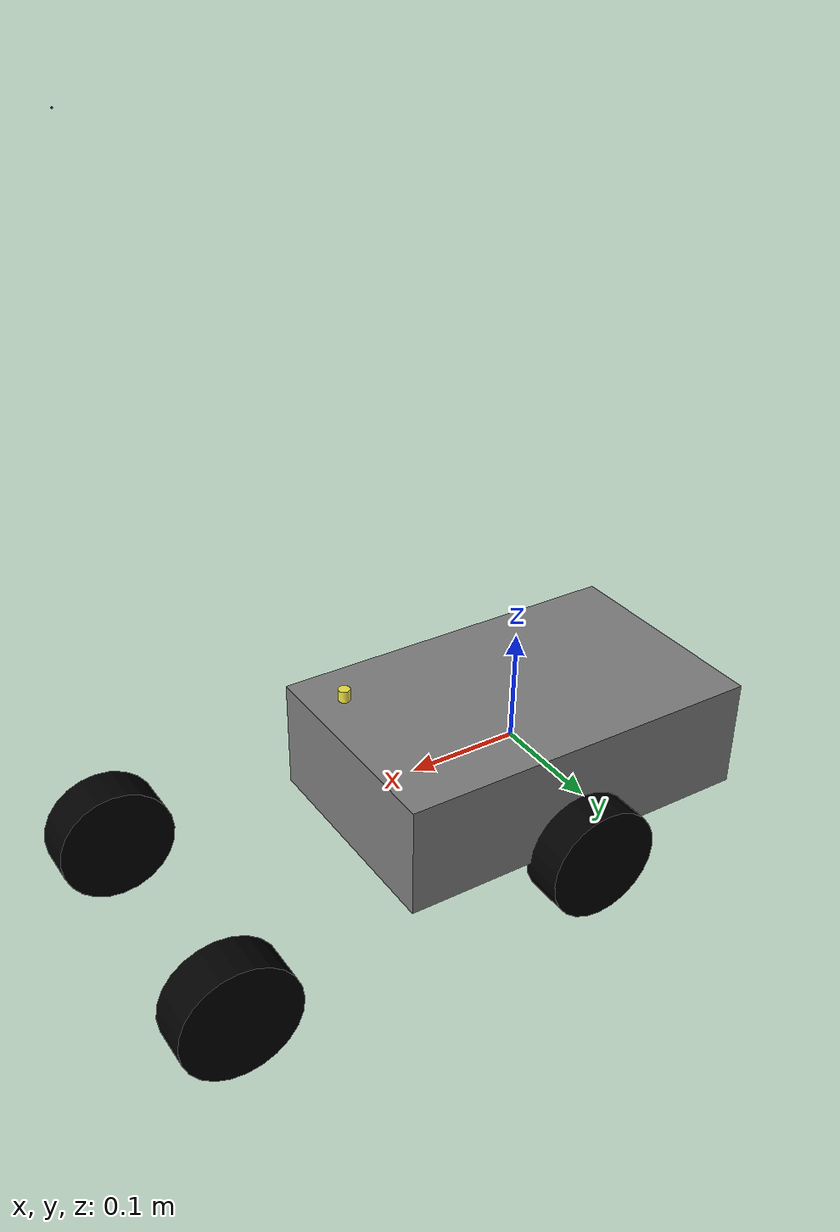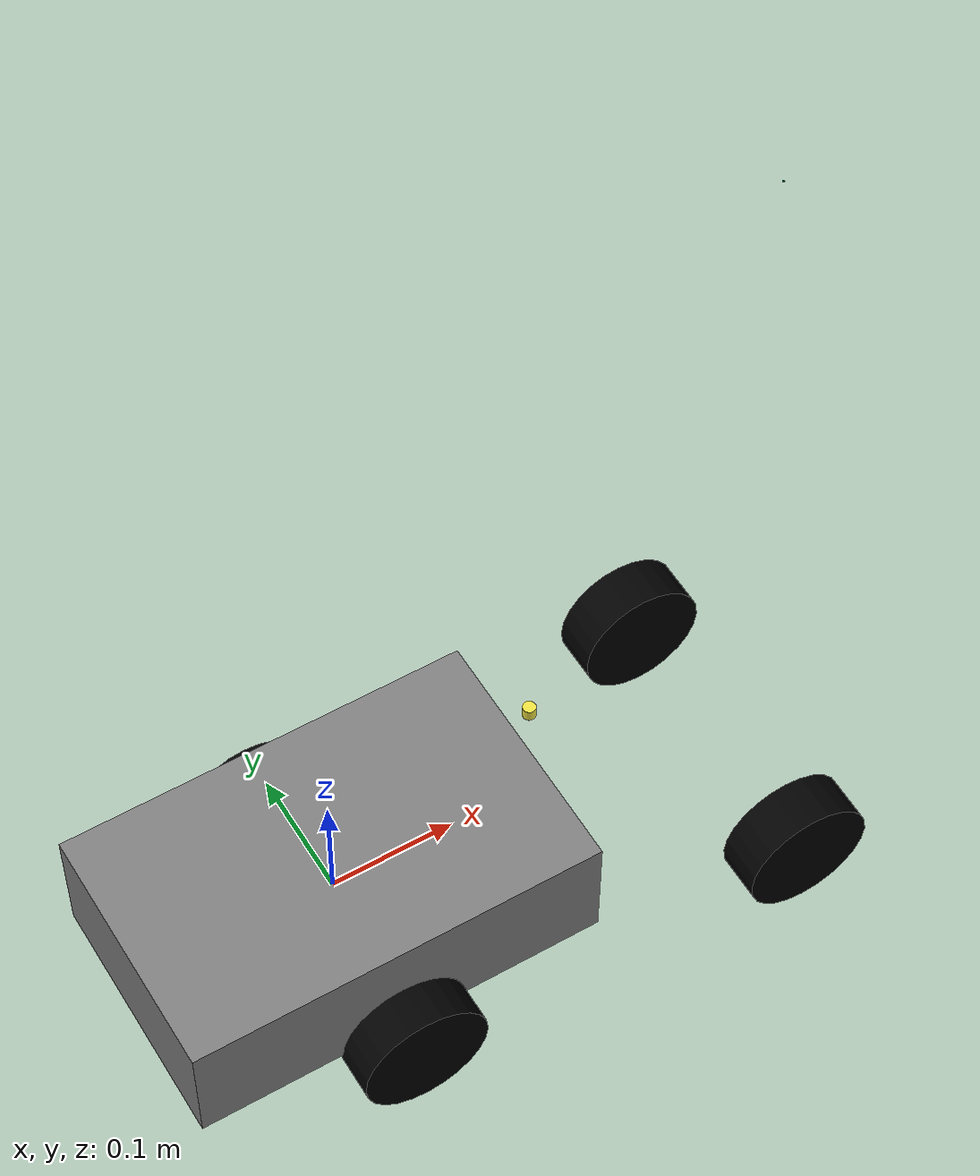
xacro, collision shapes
<?xml version="1.0"?>

<robot name="racecar" xmlns:xacro="http://www.ros.org/wiki/xacro">
  <!-- Degree-to-radian conversions -->
  <xacro:property name="degrees_45" value="0.785398163"/>  <!-- ja -->
  <xacro:property name="degrees_90" value="1.57079633"/>   <!-- ja -->
  <xacro:property name="degrees_180" value="3.14159265"/>

  <!-- chassis_length is measured along the x axis, chassis_width
       along the y axis, and chassis_height along the z axis. -->
  <xacro:property name="chassis_length" value="0.3302"/>
  <xacro:property name="chassis_width" value="0.2032"/>
  <xacro:property name="chassis_height" value="0.1"/>
  <xacro:property name="chassis_mass" value="6.788"/>
  <xacro:property name="ground_offset" value="0.04" />
  <xacro:property name="sensor_offset" value="0.05" />
  <xacro:property name="wheel_length" value="0.0381" />
  <xacro:property name="wheel_radius" value="0.0508" />
  <xacro:property name="body_mass" value="${chassis_mass}"/>
  <!--xacro:property name="wheel_mass" value="${wheel_density*pi_const*wheel_link_radius*wheel_link_radius*wheel_link_length}"/-->

  <!-- Properties of the wheel pose -->
  <xacro:property name="front_wheel_x" value="${chassis_length}"/>
  <xacro:property name="front_wheel_y" value="${(wheel_length+chassis_width)/2}"/>
  <xacro:property name="front_wheel_z" value="${wheel_radius}"/>

  <xacro:property name="rear_wheel_x" value="0"/>
  <xacro:property name="rear_wheel_y" value="${(wheel_length+chassis_width)/2}"/>
  <xacro:property name="rear_wheel_z" value="${wheel_radius}"/>

  <xacro:property name="hub_dia" value="0.09652"/>
  <xacro:property name="tire_dia" value="0.1016"/>
  <xacro:property name="tire_width" value="0.0381"/>
  <xacro:property name="hex_hub_depth" value="0.01445"/>
  <xacro:property name="wheel_mass" value="0.29"/>

  <xacro:property name="axle_eff_limit" value="5.12766"/>
  <xacro:property name="axle_vel_limit" value="244.8696"/>

  <!-- These constants are used to simulate a Traxxas 2056 servo operated at
       6 V. servo_stall_torque is measured in N m. servo_no_load_speed is
       measured in rad/s. -->
  <xacro:property name="servo_stall_torque" value="0.5649"/>
  <xacro:property name="servo_no_load_speed" value="4.553"/>

  <material name="battery_mat">
    <color rgba="0 0 1 1"/>
  </material>
  <material name="chassis_mat">
    <color rgba="0.5 0.5 0.5 1"/>
  </material>
  <material name="tire_mat">
    <color rgba="0 0 0 1"/>
  </material>

  <material name="black">
      <color rgba="0 0 0 1"/>
  </material>

  <!-- Null inertial element. This is needed to make the model work with
       Gazebo. -->
  <xacro:macro name="null_inertial">
    <inertial>
      <mass value="0.001"/>
      <inertia ixx="0.001" ixy="0" ixz="0" iyy="0.001" iyz="0" izz="0.001"/>
    </inertial>
  </xacro:macro>

  <xacro:macro name="thick_walled_tube_inertial"
               params="inner_rad outer_rad height mass">
    <inertial>
      <mass value="${mass}"/>
      <inertia ixx="${(1 / 12) * mass * (3 * (inner_rad * inner_rad +
                    outer_rad * outer_rad) + height * height)}"
               ixy="0" ixz="0"
               iyy="${(1 / 12) * mass * (3 * (inner_rad * inner_rad +
                    outer_rad * outer_rad) + height * height)}"
               iyz="0"
               izz="${mass * (inner_rad * inner_rad +
                    outer_rad * outer_rad) / 2}"/>
    </inertial>
  </xacro:macro>

   <!-- front wheel -->
  <xacro:macro name="front_wheel" params="lr_prefix fr_prefix lr_reflect">

    <link name="${lr_prefix}_steering_link">
      <xacro:null_inertial/>
    </link>

    <joint name="${lr_prefix}_steering_joint" type="revolute">
      <origin xyz="${fr_reflect * front_wheel_x} ${lr_reflect * front_wheel_y} ${-front_wheel_z}" rpy="0 ${degrees_90} 0"/>
      <parent link="chassis"/>
      <child link="${lr_prefix}_steering_link"/>
      <axis xyz="-1 0 0"/>
      <limit lower="${-degrees_45}" upper="${degrees_45}"
            effort="${servo_stall_torque}" velocity="${servo_no_load_speed}"/>
      <!--dynamics damping="150" friction="0.1"/-->
    </joint>

    <link name="${lr_prefix}_${fr_prefix}_wheel">
      <visual>
        <origin xyz="0 0 ${lr_reflect * ((tire_width / 2 - hex_hub_depth))}" rpy="0 0 0"/>
        <geometry>
          <cylinder radius="${tire_dia / 2}" length="${tire_width}"/>
        </geometry>
        <material name="black" />
      </visual>
      <collision>
        <origin xyz="0 0 ${lr_reflect * ((tire_width / 2 - hex_hub_depth))}" rpy="0 0 0"/>
        <geometry>
          <cylinder radius="${tire_dia / 2}" length="${tire_width}"/>
        </geometry>
      </collision>
      <xacro:thick_walled_tube_inertial
          inner_rad="${hub_dia / 2}" outer_rad="${tire_dia / 2}"
          height="${tire_width}" mass="${wheel_mass}"/>
    </link>

    <joint name="${lr_prefix}_${fr_prefix}_axle" type="continuous">
      <parent link="${lr_prefix}_steering_link"/>
      <child link="${lr_prefix}_${fr_prefix}_wheel"/>
      <origin xyz="0 0 0" rpy="1.5708 0 0" />
      <axis xyz="0 0 -1"/>
      <limit effort="${axle_eff_limit}" velocity="${axle_vel_limit}"/>
      <!--dynamics damping="150" friction="0.1"/-->
    </joint>

    <gazebo reference="${lr_prefix}_${fr_prefix}_wheel">
      <material>Gazebo/Black</material>
    </gazebo>

  </xacro:macro>

  <!-- rear wheel -->
  <xacro:macro name="rear_wheel" params="lr_prefix fr_prefix lr_reflect">

    <link name="${lr_prefix}_${fr_prefix}_wheel">
      <visual>
        <origin xyz="0 0 ${lr_reflect * ((tire_width / 2 - hex_hub_depth))}" rpy="0 0 0"/>
        <geometry>
          <cylinder radius="${tire_dia / 2}" length="${tire_width}"/>
        </geometry>
        <material name="black" />
      </visual>

      <collision>
        <origin xyz="0 0 ${lr_reflect * ((tire_width / 2 - hex_hub_depth))}" rpy="0 0 0"/>
        <geometry>
          <cylinder radius="${tire_dia / 2}" length="${tire_width}"/>
        </geometry>
      </collision>

      <xacro:thick_walled_tube_inertial
          inner_rad="${hub_dia / 2}" outer_rad="${tire_dia / 2}"
          height="${tire_width}" mass="${wheel_mass}"/>
    </link>

    <joint name="${lr_prefix}_${fr_prefix}_axle" type="continuous">
      <parent link="chassis"/>
      <child link="${lr_prefix}_${fr_prefix}_wheel"/>
      <origin xyz="${fr_reflect * rear_wheel_x} ${lr_reflect * rear_wheel_y} ${-rear_wheel_z}" rpy="1.5708 0 0"/>
      <axis xyz="0 0 -1"/>
      <limit effort="${axle_eff_limit}" velocity="${axle_vel_limit}"/>
      <!--dynamics damping="150" friction="0.1"/-->

    </joint>

    <gazebo reference="${lr_prefix}_${fr_prefix}_wheel">
      <material>Gazebo/Black</material>
    </gazebo>

  </xacro:macro>

  <xacro:macro name="front_wheel_to_base" params="lr_prefix fr_prefix lr_reflect fr_reflect">
    <xacro:front_wheel lr_prefix="${lr_prefix}" fr_prefix="${fr_prefix}" lr_reflect="${lr_reflect}"/>
  </xacro:macro>

  <xacro:macro name="rear_wheel_to_base" params="lr_prefix fr_prefix lr_reflect fr_reflect">
    <xacro:rear_wheel lr_prefix="${lr_prefix}" fr_prefix="${fr_prefix}" lr_reflect="${lr_reflect}"/>
  </xacro:macro>

  <!-- base_link must have geometry so that its axes can be displayed in
       rviz. -->
  <link name="base_link"/>

  <!-- Chassis -->
  <link name="chassis">
    <visual>
      <origin xyz="${chassis_length/2} 0 ${ground_offset}"/>
      <geometry>
        <box size="${chassis_length} ${chassis_width} ${chassis_height}"/>
      </geometry>
      <material name="chassis_mat"/>
    </visual>

    <collision>
      <geometry>
        <box size="${chassis_length} ${chassis_width} ${chassis_height}"/>
      </geometry>
    </collision>

    <inertial>
        <origin xyz="${chassis_length/2} 0 ${ground_offset}"/>
        <mass value="${body_mass}"/>
        <inertia
        ixx="${(1/12)*chassis_mass*(chassis_width+chassis_height*chassis_height)}"
        ixy="0"
        ixz="0"
        iyy="${(1/12)*chassis_mass*(chassis_length*chassis_length+chassis_height*chassis_height)}"
        iyz="0"
        izz="${(1/12)*chassis_mass*(chassis_width*chassis_width+chassis_length*chassis_length)}"/>
    </inertial>

  </link>
  <gazebo reference="chassis">
    <material>Gazebo/Grey</material>
  </gazebo>

  <joint name="base_link_to_chassis" type="fixed">
    <parent link="base_link"/>
    <child link="chassis"/>
  </joint>

  <!-- Wheels -->
  <xacro:front_wheel_to_base lr_prefix="left" fr_prefix="front" lr_reflect="1" fr_reflect="1" />
  <xacro:front_wheel_to_base lr_prefix="right" fr_prefix="front" lr_reflect="-1" fr_reflect="1" />
  <xacro:rear_wheel_to_base lr_prefix="left" fr_prefix="rear" lr_reflect="1" fr_reflect="-1" />
  <xacro:rear_wheel_to_base lr_prefix="right" fr_prefix="rear" lr_reflect="-1" fr_reflect="-1" />

  <!-- IMU Sensor Link -->
  <link name="imu_link">
    <inertial>
        <mass value="0.001"/>
        <origin xyz="${chassis_length/2} 0 0" rpy="0 0 0"/>
        <inertia ixx="0.001" ixy="0" ixz="0" iyy="0.001" iyz="0" izz="0.001"/>
    </inertial>
  </link>

  <joint name="imu_joint" type="fixed">
      <parent link="chassis"/>
      <child link="imu_link"/>
      <origin xyz="${chassis_length/2} 0 0" rpy="0 0 0"/>
  </joint>

  <gazebo reference="imu_link">
    <gravity>true</gravity>
    <sensor name="imu_sensor" type="imu">
        <always_on>true</always_on>
        <update_rate>100</update_rate>
        <imu>
            <angular_velocity>
                <x>
                    <noise type="gaussian">
                        <mean>0.0</mean>
                        <stddev>0.0002</stddev>
                    </noise>
                </x>
                <y>
                    <noise type="gaussian">
                        <mean>0.0</mean>
                        <stddev>0.0002</stddev>
                    </noise>
                </y>
                <z>
                    <noise type="gaussian">
                        <mean>0.0</mean>
                        <stddev>0.0002</stddev>
                    </noise>
                </z>
            </angular_velocity>
            <linear_acceleration>
                <x>
                    <noise type="gaussian">
                        <mean>0.0</mean>
                        <stddev>0.017</stddev>
                    </noise>
                </x>
                <y>
                    <noise type="gaussian">
                        <mean>0.0</mean>
                        <stddev>0.017</stddev>
                    </noise>
                </y>
                <z>
                    <noise type="gaussian">
                        <mean>0.0</mean>
                        <stddev>0.017</stddev>
                    </noise>
                </z>
            </linear_acceleration>
        </imu>
        <plugin name="imu_controller" filename="libgazebo_ros_imu_sensor.so">
            <initial_orientation_as_reference>false</initial_orientation_as_reference>
            <ros>
                <remapping>~/out:=imu/data</remapping>
            </ros>
        </plugin>
    </sensor>
  </gazebo>

  <!-- GPS Sensor Link -->
  <link name="gps_link">
    <inertial>
        <mass value="0.001"/>
        <origin xyz="${chassis_length/2} 0 0" rpy="0 0 0"/>
        <inertia ixx="0.001" ixy="0" ixz="0" iyy="0.001" iyz="0" izz="0.001"/>
    </inertial>
  </link>

  <joint name="$gps_joint" type="fixed">
    <parent link="chassis"/>
    <child link="gps_link"/>
    <origin xyz="${chassis_length/2} 0 0" rpy="0 0 0"/>
  </joint>

  <gazebo reference="gps_link">
    <sensor name="gps_sensor" type="gps">
        <always_on>true</always_on>
        <update_rate>10.0</update_rate>
        <gps>
            <position_sensing>
                <horizontal>
                    <noise type="gaussian">
                        <mean>0.0</mean>
                        <stddev>1e-2</stddev>
                    </noise>
                </horizontal>
                <vertical>
                    <noise type="gaussian">
                        <mean>0.0</mean>
                        <stddev>1</stddev>
                    </noise>
                </vertical>
            </position_sensing>
        </gps>
        <plugin name="gps_controller" filename="libgazebo_ros_gps_sensor.so">
            <ros>
              <remapping>~/out:=gps/fix</remapping>
            </ros>
            <frame_name>gps_link</frame_name>
        </plugin>
    </sensor>
  </gazebo>

  <!-- Kamera Sensor Link -->
  <link name="camera_link">
    <inertial>
      <mass value="0.001" />
      <origin xyz="${chassis_length/2} 0 ${chassis_height}"/>
      <inertia ixx="0.0001" ixy="0" ixz="0" iyy="0.0001" iyz="0" izz="0.0001" />
    </inertial>
    <visual>
      <origin xyz="0 0 0" rpy="0 0 0" />
      <geometry>
        <mesh filename="file://$(find neuro_wheel)/meshes/kamera/orbbec_astra_camera.dae" scale="0.5 0.5 0.5"/>
      </geometry>
    </visual>
    <collision>
      <geometry>
        <box size="0.001 0.001 0.001"/>
      </geometry>
      <origin rpy="0 0 0" xyz="0 0 0"/>
    </collision>
  </link>

  <joint name="camera_joint" type="fixed">
    <parent link="chassis" />
    <child link="camera_link" />
    <!--origin xyz="0.34 0 ${chassis_height-sensor_offset}" rpy="0 0 0" /-->
    <origin xyz="0.34 0 0.55" rpy="0 0.523 0" />   <!-- Height von Kamera -> 0.2 !! für 720p 0.35-->   <!--0.35 normal, im Lab 0.16-->
  </joint>

  <gazebo reference="camera_link">
    <sensor name="camera_sensor" type="camera">
      <always_on>true</always_on>
      <update_rate>50.0</update_rate>
      <camera>
        <horizontal_fov>1.2566370614359172</horizontal_fov> <!--1.1694 für Labor-->
        <image>
          <width>640</width>
          <height>480</height>
          <format>R8G8B8</format>
        </image>
        <clip>
          <near>0.05</near>
          <far>100</far>
        </clip>
      </camera>
      <plugin name="camera_controller" filename="libgazebo_ros_camera.so">
        <ros>
          <remapping>~/image_raw:=camera/image_raw</remapping>
        </ros>
        <frame_name>camera_link</frame_name>
      </plugin>
    </sensor>
  </gazebo>

  <!-- Lidar Sensor Link -->
  <link name="lidar_link">
      <visual>
          <geometry>
              <mesh filename="file://$(find neuro_wheel)/meshes/lidar/hokuyo.dae" scale="1 1 1"/>
          </geometry>
          <origin xyz="0 0 0" rpy="0 0 0"/>
      </visual>
      <collision>
          <geometry>
              <cylinder radius="0.005" length="0.01"/>
          </geometry>
          <origin xyz="0 0 0" rpy="0 0 0"/>
      </collision>
      <inertial>
          <mass value="0.001"/>
          <origin xyz="${chassis_length/2} 0 ${ground_offset+chassis_height}" rpy="0 0 0"/>
          <inertia ixx="0.001" ixy="0" ixz="0" iyy="0.001" iyz="0" izz="0.001"/>
      </inertial>
  </link>

  <!-- Lidar Joint -->
  <joint name="lidar_joint" type="fixed">
      <parent link="chassis"/>
      <child link="lidar_link"/>
      <origin xyz="${chassis_length/2} 0 ${sensor_offset+chassis_height/2}" rpy="0 0 0"/>
  </joint>

  <!-- Lidar Sensor Configuration -->
  <gazebo reference="lidar_link">
      <sensor type="gpu_ray" name="lidar_sensor">
          <pose>0 0 0 0 0 0</pose>
          <visualize>false</visualize>
          <update_rate>20</update_rate>
          <ray>
              <scan>
                  <horizontal>
                      <samples>720</samples>
                      <resolution>1</resolution>
                      <min_angle>-3.14159</min_angle>
                      <max_angle>3.14159</max_angle>
                  </horizontal>
              </scan>
              <range>
                  <min>0.1</min>
                  <max>30.0</max>
              </range>
              <noise>
                  <type>gaussian</type>
                  <mean>0.0</mean>
                  <stddev>0.01</stddev>
              </noise>
          </ray>
          <plugin name="lidar_controller" filename="libgazebo_ros_ray_sensor.so">
              <ros>
                  <remapping>~/out:=scan</remapping>
              </ros>
              <output_type>sensor_msgs/LaserScan</output_type>
              <frame_name>lidar_link</frame_name>
          </plugin>
      </sensor>
  </gazebo>

 <!-- libgazebo_ros_ackermann_drive -->

  <gazebo>

    <plugin name="gazebo_ros_ackermann_drive" filename="libgazebo_ros_ackermann_drive.so">

      <ros>
        <remapping>cmd_vel:=cmd_vel</remapping>
        <remapping>odom:=odom</remapping>

      </ros>

      <update_rate>100.0</update_rate>

      <!-- wheels -->
      <front_left_joint>left_front_axle</front_left_joint>
      <front_right_joint>right_front_axle</front_right_joint>

      <rear_left_joint>left_rear_axle</rear_left_joint>
      <rear_right_joint>right_rear_axle</rear_right_joint>

      <left_steering_joint>left_steering_joint</left_steering_joint>
      <right_steering_joint>right_steering_joint</right_steering_joint>

      <!-- Max absolute steer angle for tyre in radians-->
      <!-- Any cmd_vel angular z greater than this would be capped -->
      <max_steer>1.01</max_steer>

      <!-- Max absolute steering angle of steering wheel -->
      <max_steering_angle>0.4189</max_steering_angle>

      <!-- Max absolute linear speed in m/s -->
      <max_speed>7</max_speed>

      <!-- PID tuning -->
    <left_steering_pid_gain>1500 0 1</left_steering_pid_gain>
    <left_steering_i_range>0 0</left_steering_i_range>
    <right_steering_pid_gain>1500 0 1</right_steering_pid_gain>
    <right_steering_i_range>0 0</right_steering_i_range>
    <linear_velocity_pid_gain>1000 0 1</linear_velocity_pid_gain>
    <linear_velocity_i_range>0 0</linear_velocity_i_range>

      <!-- output -->
      <publish_odom>true</publish_odom>
      <publish_odom_tf>true</publish_odom_tf>
      <publish_wheel_tf>true</publish_wheel_tf>
      <publish_distance>false</publish_distance>

      <odometry_frame>odom</odometry_frame>
      <robot_base_frame>base_link</robot_base_frame>

    </plugin>

  </gazebo>

</robot>
